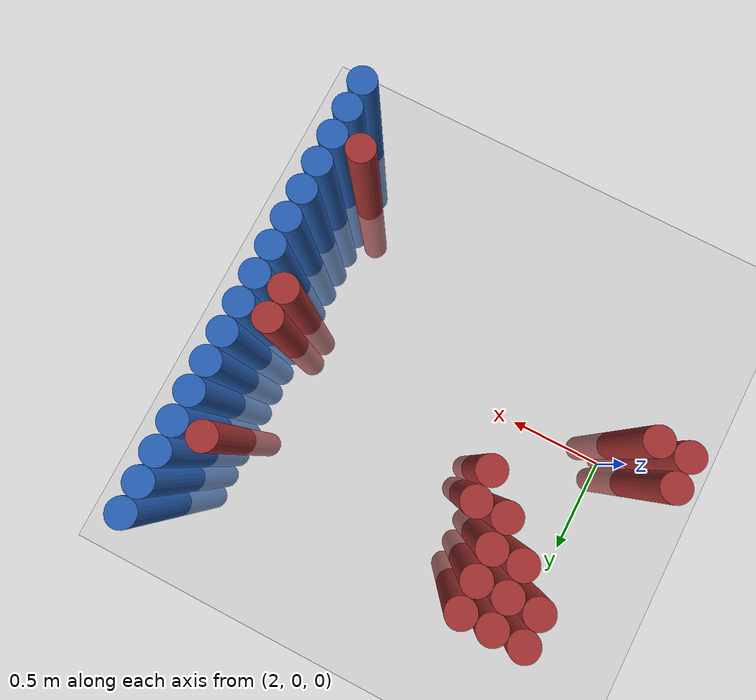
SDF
<sdf version="1.6">
 <world name="default">
  <model name="ground_plane">
   <static>1</static>
   <link name="link">
    <collision name="collision">
     <geometry><plane><normal>0 0 1</normal><size>100 100</size></plane></geometry>
     <surface><friction><ode><mu>100</mu><mu2>50</mu2></ode></friction></surface>
    </collision>
    <visual name="visual">
     <cast_shadows>0</cast_shadows>
     <geometry><plane><normal>0 0 1</normal><size>100 100</size></plane></geometry>
     <material>
      <script><uri>file://media/materials/scripts/gazebo.material</uri><name>Gazebo/Grey</name></script>
     </material>
    </visual>
   </link>
  </model>
  <model name="unit_cylinder_100">
   <static>1</static>
   <pose>3.925000 -1.025000 0.000000 0.000000 0.000000 0.000000</pose>
   <link name="link">
    <inertial>
     <mass>1</mass>
     <inertia><ixx>0.145833</ixx><ixy>0</ixy><ixz>0</ixz><iyy>0.145833</iyy><iyz>0</iyz><izz>0.125</izz></inertia>
    </inertial>
    <collision name="collision">
     <geometry><cylinder><radius>0.075000</radius><length>1.5</length></cylinder></geometry>
    </collision>
    <visual name="visual">
     <geometry><cylinder><radius>0.075000</radius><length>1.5</length></cylinder></geometry>
     <material>
      <ambient>0.152000 0.379000 0.720000 1</ambient>
      <diffuse>0.152000 0.379000 0.720000 1</diffuse>
     </material>
     <material>
      <script><name>Gazebo/Grey</name><uri>file://media/materials/scripts/gazebo.material</uri></script>
     </material>
    </visual>
   </link>
  </model>
  <model name="unit_cylinder_102">
   <static>1</static>
   <pose>3.925000 -0.875000 0.000000 0.000000 0.000000 0.000000</pose>
   <link name="link">
    <inertial>
     <mass>1</mass>
     <inertia><ixx>0.145833</ixx><ixy>0</ixy><ixz>0</ixz><iyy>0.145833</iyy><iyz>0</iyz><izz>0.125</izz></inertia>
    </inertial>
    <collision name="collision">
     <geometry><cylinder><radius>0.075000</radius><length>1.5</length></cylinder></geometry>
    </collision>
    <visual name="visual">
     <geometry><cylinder><radius>0.075000</radius><length>1.5</length></cylinder></geometry>
     <material>
      <ambient>0.152000 0.379000 0.720000 1</ambient>
      <diffuse>0.152000 0.379000 0.720000 1</diffuse>
     </material>
     <material>
      <script><name>Gazebo/Grey</name><uri>file://media/materials/scripts/gazebo.material</uri></script>
     </material>
    </visual>
   </link>
  </model>
  <model name="unit_cylinder_104">
   <static>1</static>
   <pose>3.925000 -0.725000 0.000000 0.000000 0.000000 0.000000</pose>
   <link name="link">
    <inertial>
     <mass>1</mass>
     <inertia><ixx>0.145833</ixx><ixy>0</ixy><ixz>0</ixz><iyy>0.145833</iyy><iyz>0</iyz><izz>0.125</izz></inertia>
    </inertial>
    <collision name="collision">
     <geometry><cylinder><radius>0.075000</radius><length>1.5</length></cylinder></geometry>
    </collision>
    <visual name="visual">
     <geometry><cylinder><radius>0.075000</radius><length>1.5</length></cylinder></geometry>
     <material>
      <ambient>0.152000 0.379000 0.720000 1</ambient>
      <diffuse>0.152000 0.379000 0.720000 1</diffuse>
     </material>
     <material>
      <script><name>Gazebo/Grey</name><uri>file://media/materials/scripts/gazebo.material</uri></script>
     </material>
    </visual>
   </link>
  </model>
  <model name="unit_cylinder_106">
   <static>1</static>
   <pose>3.925000 -0.575000 0.000000 0.000000 0.000000 0.000000</pose>
   <link name="link">
    <inertial>
     <mass>1</mass>
     <inertia><ixx>0.145833</ixx><ixy>0</ixy><ixz>0</ixz><iyy>0.145833</iyy><iyz>0</iyz><izz>0.125</izz></inertia>
    </inertial>
    <collision name="collision">
     <geometry><cylinder><radius>0.075000</radius><length>1.5</length></cylinder></geometry>
    </collision>
    <visual name="visual">
     <geometry><cylinder><radius>0.075000</radius><length>1.5</length></cylinder></geometry>
     <material>
      <ambient>0.152000 0.379000 0.720000 1</ambient>
      <diffuse>0.152000 0.379000 0.720000 1</diffuse>
     </material>
     <material>
      <script><name>Gazebo/Grey</name><uri>file://media/materials/scripts/gazebo.material</uri></script>
     </material>
    </visual>
   </link>
  </model>
  <model name="unit_cylinder_108">
   <static>1</static>
   <pose>3.925000 -0.425000 0.000000 0.000000 0.000000 0.000000</pose>
   <link name="link">
    <inertial>
     <mass>1</mass>
     <inertia><ixx>0.145833</ixx><ixy>0</ixy><ixz>0</ixz><iyy>0.145833</iyy><iyz>0</iyz><izz>0.125</izz></inertia>
    </inertial>
    <collision name="collision">
     <geometry><cylinder><radius>0.075000</radius><length>1.5</length></cylinder></geometry>
    </collision>
    <visual name="visual">
     <geometry><cylinder><radius>0.075000</radius><length>1.5</length></cylinder></geometry>
     <material>
      <ambient>0.152000 0.379000 0.720000 1</ambient>
      <diffuse>0.152000 0.379000 0.720000 1</diffuse>
     </material>
     <material>
      <script><name>Gazebo/Grey</name><uri>file://media/materials/scripts/gazebo.material</uri></script>
     </material>
    </visual>
   </link>
  </model>
  <model name="unit_cylinder_110">
   <static>1</static>
   <pose>3.925000 -0.275000 0.000000 0.000000 0.000000 0.000000</pose>
   <link name="link">
    <inertial>
     <mass>1</mass>
     <inertia><ixx>0.145833</ixx><ixy>0</ixy><ixz>0</ixz><iyy>0.145833</iyy><iyz>0</iyz><izz>0.125</izz></inertia>
    </inertial>
    <collision name="collision">
     <geometry><cylinder><radius>0.075000</radius><length>1.5</length></cylinder></geometry>
    </collision>
    <visual name="visual">
     <geometry><cylinder><radius>0.075000</radius><length>1.5</length></cylinder></geometry>
     <material>
      <ambient>0.152000 0.379000 0.720000 1</ambient>
      <diffuse>0.152000 0.379000 0.720000 1</diffuse>
     </material>
     <material>
      <script><name>Gazebo/Grey</name><uri>file://media/materials/scripts/gazebo.material</uri></script>
     </material>
    </visual>
   </link>
  </model>
  <model name="unit_cylinder_112">
   <static>1</static>
   <pose>3.925000 -0.125000 0.000000 0.000000 0.000000 0.000000</pose>
   <link name="link">
    <inertial>
     <mass>1</mass>
     <inertia><ixx>0.145833</ixx><ixy>0</ixy><ixz>0</ixz><iyy>0.145833</iyy><iyz>0</iyz><izz>0.125</izz></inertia>
    </inertial>
    <collision name="collision">
     <geometry><cylinder><radius>0.075000</radius><length>1.5</length></cylinder></geometry>
    </collision>
    <visual name="visual">
     <geometry><cylinder><radius>0.075000</radius><length>1.5</length></cylinder></geometry>
     <material>
      <ambient>0.152000 0.379000 0.720000 1</ambient>
      <diffuse>0.152000 0.379000 0.720000 1</diffuse>
     </material>
     <material>
      <script><name>Gazebo/Grey</name><uri>file://media/materials/scripts/gazebo.material</uri></script>
     </material>
    </visual>
   </link>
  </model>
  <model name="unit_cylinder_114">
   <static>1</static>
   <pose>3.925000 0.025000 0.000000 0.000000 0.000000 0.000000</pose>
   <link name="link">
    <inertial>
     <mass>1</mass>
     <inertia><ixx>0.145833</ixx><ixy>0</ixy><ixz>0</ixz><iyy>0.145833</iyy><iyz>0</iyz><izz>0.125</izz></inertia>
    </inertial>
    <collision name="collision">
     <geometry><cylinder><radius>0.075000</radius><length>1.5</length></cylinder></geometry>
    </collision>
    <visual name="visual">
     <geometry><cylinder><radius>0.075000</radius><length>1.5</length></cylinder></geometry>
     <material>
      <ambient>0.152000 0.379000 0.720000 1</ambient>
      <diffuse>0.152000 0.379000 0.720000 1</diffuse>
     </material>
     <material>
      <script><name>Gazebo/Grey</name><uri>file://media/materials/scripts/gazebo.material</uri></script>
     </material>
    </visual>
   </link>
  </model>
  <model name="unit_cylinder_116">
   <static>1</static>
   <pose>3.925000 0.175000 0.000000 0.000000 0.000000 0.000000</pose>
   <link name="link">
    <inertial>
     <mass>1</mass>
     <inertia><ixx>0.145833</ixx><ixy>0</ixy><ixz>0</ixz><iyy>0.145833</iyy><iyz>0</iyz><izz>0.125</izz></inertia>
    </inertial>
    <collision name="collision">
     <geometry><cylinder><radius>0.075000</radius><length>1.5</length></cylinder></geometry>
    </collision>
    <visual name="visual">
     <geometry><cylinder><radius>0.075000</radius><length>1.5</length></cylinder></geometry>
     <material>
      <ambient>0.152000 0.379000 0.720000 1</ambient>
      <diffuse>0.152000 0.379000 0.720000 1</diffuse>
     </material>
     <material>
      <script><name>Gazebo/Grey</name><uri>file://media/materials/scripts/gazebo.material</uri></script>
     </material>
    </visual>
   </link>
  </model>
  <model name="unit_cylinder_118">
   <static>1</static>
   <pose>3.925000 0.325000 0.000000 0.000000 0.000000 0.000000</pose>
   <link name="link">
    <inertial>
     <mass>1</mass>
     <inertia><ixx>0.145833</ixx><ixy>0</ixy><ixz>0</ixz><iyy>0.145833</iyy><iyz>0</iyz><izz>0.125</izz></inertia>
    </inertial>
    <collision name="collision">
     <geometry><cylinder><radius>0.075000</radius><length>1.5</length></cylinder></geometry>
    </collision>
    <visual name="visual">
     <geometry><cylinder><radius>0.075000</radius><length>1.5</length></cylinder></geometry>
     <material>
      <ambient>0.152000 0.379000 0.720000 1</ambient>
      <diffuse>0.152000 0.379000 0.720000 1</diffuse>
     </material>
     <material>
      <script><name>Gazebo/Grey</name><uri>file://media/materials/scripts/gazebo.material</uri></script>
     </material>
    </visual>
   </link>
  </model>
  <model name="unit_cylinder_120">
   <static>1</static>
   <pose>3.925000 0.475000 0.000000 0.000000 0.000000 0.000000</pose>
   <link name="link">
    <inertial>
     <mass>1</mass>
     <inertia><ixx>0.145833</ixx><ixy>0</ixy><ixz>0</ixz><iyy>0.145833</iyy><iyz>0</iyz><izz>0.125</izz></inertia>
    </inertial>
    <collision name="collision">
     <geometry><cylinder><radius>0.075000</radius><length>1.5</length></cylinder></geometry>
    </collision>
    <visual name="visual">
     <geometry><cylinder><radius>0.075000</radius><length>1.5</length></cylinder></geometry>
     <material>
      <ambient>0.152000 0.379000 0.720000 1</ambient>
      <diffuse>0.152000 0.379000 0.720000 1</diffuse>
     </material>
     <material>
      <script><name>Gazebo/Grey</name><uri>file://media/materials/scripts/gazebo.material</uri></script>
     </material>
    </visual>
   </link>
  </model>
  <model name="unit_cylinder_122">
   <static>1</static>
   <pose>3.925000 0.625000 0.000000 0.000000 0.000000 0.000000</pose>
   <link name="link">
    <inertial>
     <mass>1</mass>
     <inertia><ixx>0.145833</ixx><ixy>0</ixy><ixz>0</ixz><iyy>0.145833</iyy><iyz>0</iyz><izz>0.125</izz></inertia>
    </inertial>
    <collision name="collision">
     <geometry><cylinder><radius>0.075000</radius><length>1.5</length></cylinder></geometry>
    </collision>
    <visual name="visual">
     <geometry><cylinder><radius>0.075000</radius><length>1.5</length></cylinder></geometry>
     <material>
      <ambient>0.152000 0.379000 0.720000 1</ambient>
      <diffuse>0.152000 0.379000 0.720000 1</diffuse>
     </material>
     <material>
      <script><name>Gazebo/Grey</name><uri>file://media/materials/scripts/gazebo.material</uri></script>
     </material>
    </visual>
   </link>
  </model>
  <model name="unit_cylinder_124">
   <static>1</static>
   <pose>3.925000 0.775000 0.000000 0.000000 0.000000 0.000000</pose>
   <link name="link">
    <inertial>
     <mass>1</mass>
     <inertia><ixx>0.145833</ixx><ixy>0</ixy><ixz>0</ixz><iyy>0.145833</iyy><iyz>0</iyz><izz>0.125</izz></inertia>
    </inertial>
    <collision name="collision">
     <geometry><cylinder><radius>0.075000</radius><length>1.5</length></cylinder></geometry>
    </collision>
    <visual name="visual">
     <geometry><cylinder><radius>0.075000</radius><length>1.5</length></cylinder></geometry>
     <material>
      <ambient>0.152000 0.379000 0.720000 1</ambient>
      <diffuse>0.152000 0.379000 0.720000 1</diffuse>
     </material>
     <material>
      <script><name>Gazebo/Grey</name><uri>file://media/materials/scripts/gazebo.material</uri></script>
     </material>
    </visual>
   </link>
  </model>
  <model name="unit_cylinder_126">
   <static>1</static>
   <pose>3.925000 0.925000 0.000000 0.000000 0.000000 0.000000</pose>
   <link name="link">
    <inertial>
     <mass>1</mass>
     <inertia><ixx>0.145833</ixx><ixy>0</ixy><ixz>0</ixz><iyy>0.145833</iyy><iyz>0</iyz><izz>0.125</izz></inertia>
    </inertial>
    <collision name="collision">
     <geometry><cylinder><radius>0.075000</radius><length>1.5</length></cylinder></geometry>
    </collision>
    <visual name="visual">
     <geometry><cylinder><radius>0.075000</radius><length>1.5</length></cylinder></geometry>
     <material>
      <ambient>0.152000 0.379000 0.720000 1</ambient>
      <diffuse>0.152000 0.379000 0.720000 1</diffuse>
     </material>
     <material>
      <script><name>Gazebo/Grey</name><uri>file://media/materials/scripts/gazebo.material</uri></script>
     </material>
    </visual>
   </link>
  </model>
  <model name="unit_cylinder_128">
   <static>1</static>
   <pose>3.925000 1.075000 0.000000 0.000000 0.000000 0.000000</pose>
   <link name="link">
    <inertial>
     <mass>1</mass>
     <inertia><ixx>0.145833</ixx><ixy>0</ixy><ixz>0</ixz><iyy>0.145833</iyy><iyz>0</iyz><izz>0.125</izz></inertia>
    </inertial>
    <collision name="collision">
     <geometry><cylinder><radius>0.075000</radius><length>1.5</length></cylinder></geometry>
    </collision>
    <visual name="visual">
     <geometry><cylinder><radius>0.075000</radius><length>1.5</length></cylinder></geometry>
     <material>
      <ambient>0.152000 0.379000 0.720000 1</ambient>
      <diffuse>0.152000 0.379000 0.720000 1</diffuse>
     </material>
     <material>
      <script><name>Gazebo/Grey</name><uri>file://media/materials/scripts/gazebo.material</uri></script>
     </material>
    </visual>
   </link>
  </model>
  <model name="unit_cylinder_130">
   <static>1</static>
   <pose>3.925000 1.225000 0.000000 0.000000 0.000000 0.000000</pose>
   <link name="link">
    <inertial>
     <mass>1</mass>
     <inertia><ixx>0.145833</ixx><ixy>0</ixy><ixz>0</ixz><iyy>0.145833</iyy><iyz>0</iyz><izz>0.125</izz></inertia>
    </inertial>
    <collision name="collision">
     <geometry><cylinder><radius>0.075000</radius><length>1.5</length></cylinder></geometry>
    </collision>
    <visual name="visual">
     <geometry><cylinder><radius>0.075000</radius><length>1.5</length></cylinder></geometry>
     <material>
      <ambient>0.152000 0.379000 0.720000 1</ambient>
      <diffuse>0.152000 0.379000 0.720000 1</diffuse>
     </material>
     <material>
      <script><name>Gazebo/Grey</name><uri>file://media/materials/scripts/gazebo.material</uri></script>
     </material>
    </visual>
   </link>
  </model>
  <model name="unit_cylinder_381">
   <static>1</static>
   <pose>1.825000 -0.125000 0.000000 0.000000 0.000000 0.000000</pose>
   <link name="link">
    <inertial>
     <mass>1</mass>
     <inertia><ixx>0.145833</ixx><ixy>0</ixy><ixz>0</ixz><iyy>0.145833</iyy><iyz>0</iyz><izz>0.125</izz></inertia>
    </inertial>
    <collision name="collision">
     <geometry><cylinder><radius>0.075000</radius><length>1.5</length></cylinder></geometry>
    </collision>
    <visual name="visual">
     <geometry><cylinder><radius>0.075000</radius><length>1.5</length></cylinder></geometry>
     <material>
      <ambient>0.648000 0.192000 0.192000 1</ambient>
      <diffuse>0.648000 0.192000 0.192000 1</diffuse>
     </material>
     <material>
      <script><name>Gazebo/Grey</name><uri>file://media/materials/scripts/gazebo.material</uri></script>
     </material>
    </visual>
   </link>
  </model>
  <model name="unit_cylinder_382">
   <static>1</static>
   <pose>1.825000 0.025000 0.000000 0.000000 0.000000 0.000000</pose>
   <link name="link">
    <inertial>
     <mass>1</mass>
     <inertia><ixx>0.145833</ixx><ixy>0</ixy><ixz>0</ixz><iyy>0.145833</iyy><iyz>0</iyz><izz>0.125</izz></inertia>
    </inertial>
    <collision name="collision">
     <geometry><cylinder><radius>0.075000</radius><length>1.5</length></cylinder></geometry>
    </collision>
    <visual name="visual">
     <geometry><cylinder><radius>0.075000</radius><length>1.5</length></cylinder></geometry>
     <material>
      <ambient>0.648000 0.192000 0.192000 1</ambient>
      <diffuse>0.648000 0.192000 0.192000 1</diffuse>
     </material>
     <material>
      <script><name>Gazebo/Grey</name><uri>file://media/materials/scripts/gazebo.material</uri></script>
     </material>
    </visual>
   </link>
  </model>
  <model name="unit_cylinder_383">
   <static>1</static>
   <pose>1.975000 -0.125000 0.000000 0.000000 0.000000 0.000000</pose>
   <link name="link">
    <inertial>
     <mass>1</mass>
     <inertia><ixx>0.145833</ixx><ixy>0</ixy><ixz>0</ixz><iyy>0.145833</iyy><iyz>0</iyz><izz>0.125</izz></inertia>
    </inertial>
    <collision name="collision">
     <geometry><cylinder><radius>0.075000</radius><length>1.5</length></cylinder></geometry>
    </collision>
    <visual name="visual">
     <geometry><cylinder><radius>0.075000</radius><length>1.5</length></cylinder></geometry>
     <material>
      <ambient>0.648000 0.192000 0.192000 1</ambient>
      <diffuse>0.648000 0.192000 0.192000 1</diffuse>
     </material>
     <material>
      <script><name>Gazebo/Grey</name><uri>file://media/materials/scripts/gazebo.material</uri></script>
     </material>
    </visual>
   </link>
  </model>
  <model name="unit_cylinder_384">
   <static>1</static>
   <pose>2.125000 0.775000 0.000000 0.000000 0.000000 0.000000</pose>
   <link name="link">
    <inertial>
     <mass>1</mass>
     <inertia><ixx>0.145833</ixx><ixy>0</ixy><ixz>0</ixz><iyy>0.145833</iyy><iyz>0</iyz><izz>0.125</izz></inertia>
    </inertial>
    <collision name="collision">
     <geometry><cylinder><radius>0.075000</radius><length>1.5</length></cylinder></geometry>
    </collision>
    <visual name="visual">
     <geometry><cylinder><radius>0.075000</radius><length>1.5</length></cylinder></geometry>
     <material>
      <ambient>0.648000 0.192000 0.192000 1</ambient>
      <diffuse>0.648000 0.192000 0.192000 1</diffuse>
     </material>
     <material>
      <script><name>Gazebo/Grey</name><uri>file://media/materials/scripts/gazebo.material</uri></script>
     </material>
    </visual>
   </link>
  </model>
  <model name="unit_cylinder_385">
   <static>1</static>
   <pose>2.125000 0.925000 0.000000 0.000000 0.000000 0.000000</pose>
   <link name="link">
    <inertial>
     <mass>1</mass>
     <inertia><ixx>0.145833</ixx><ixy>0</ixy><ixz>0</ixz><iyy>0.145833</iyy><iyz>0</iyz><izz>0.125</izz></inertia>
    </inertial>
    <collision name="collision">
     <geometry><cylinder><radius>0.075000</radius><length>1.5</length></cylinder></geometry>
    </collision>
    <visual name="visual">
     <geometry><cylinder><radius>0.075000</radius><length>1.5</length></cylinder></geometry>
     <material>
      <ambient>0.648000 0.192000 0.192000 1</ambient>
      <diffuse>0.648000 0.192000 0.192000 1</diffuse>
     </material>
     <material>
      <script><name>Gazebo/Grey</name><uri>file://media/materials/scripts/gazebo.material</uri></script>
     </material>
    </visual>
   </link>
  </model>
  <model name="unit_cylinder_386">
   <static>1</static>
   <pose>2.275000 0.625000 0.000000 0.000000 0.000000 0.000000</pose>
   <link name="link">
    <inertial>
     <mass>1</mass>
     <inertia><ixx>0.145833</ixx><ixy>0</ixy><ixz>0</ixz><iyy>0.145833</iyy><iyz>0</iyz><izz>0.125</izz></inertia>
    </inertial>
    <collision name="collision">
     <geometry><cylinder><radius>0.075000</radius><length>1.5</length></cylinder></geometry>
    </collision>
    <visual name="visual">
     <geometry><cylinder><radius>0.075000</radius><length>1.5</length></cylinder></geometry>
     <material>
      <ambient>0.648000 0.192000 0.192000 1</ambient>
      <diffuse>0.648000 0.192000 0.192000 1</diffuse>
     </material>
     <material>
      <script><name>Gazebo/Grey</name><uri>file://media/materials/scripts/gazebo.material</uri></script>
     </material>
    </visual>
   </link>
  </model>
  <model name="unit_cylinder_387">
   <static>1</static>
   <pose>2.275000 0.775000 0.000000 0.000000 0.000000 0.000000</pose>
   <link name="link">
    <inertial>
     <mass>1</mass>
     <inertia><ixx>0.145833</ixx><ixy>0</ixy><ixz>0</ixz><iyy>0.145833</iyy><iyz>0</iyz><izz>0.125</izz></inertia>
    </inertial>
    <collision name="collision">
     <geometry><cylinder><radius>0.075000</radius><length>1.5</length></cylinder></geometry>
    </collision>
    <visual name="visual">
     <geometry><cylinder><radius>0.075000</radius><length>1.5</length></cylinder></geometry>
     <material>
      <ambient>0.648000 0.192000 0.192000 1</ambient>
      <diffuse>0.648000 0.192000 0.192000 1</diffuse>
     </material>
     <material>
      <script><name>Gazebo/Grey</name><uri>file://media/materials/scripts/gazebo.material</uri></script>
     </material>
    </visual>
   </link>
  </model>
  <model name="unit_cylinder_388">
   <static>1</static>
   <pose>2.275000 0.925000 0.000000 0.000000 0.000000 0.000000</pose>
   <link name="link">
    <inertial>
     <mass>1</mass>
     <inertia><ixx>0.145833</ixx><ixy>0</ixy><ixz>0</ixz><iyy>0.145833</iyy><iyz>0</iyz><izz>0.125</izz></inertia>
    </inertial>
    <collision name="collision">
     <geometry><cylinder><radius>0.075000</radius><length>1.5</length></cylinder></geometry>
    </collision>
    <visual name="visual">
     <geometry><cylinder><radius>0.075000</radius><length>1.5</length></cylinder></geometry>
     <material>
      <ambient>0.648000 0.192000 0.192000 1</ambient>
      <diffuse>0.648000 0.192000 0.192000 1</diffuse>
     </material>
     <material>
      <script><name>Gazebo/Grey</name><uri>file://media/materials/scripts/gazebo.material</uri></script>
     </material>
    </visual>
   </link>
  </model>
  <model name="unit_cylinder_389">
   <static>1</static>
   <pose>2.425000 0.475000 0.000000 0.000000 0.000000 0.000000</pose>
   <link name="link">
    <inertial>
     <mass>1</mass>
     <inertia><ixx>0.145833</ixx><ixy>0</ixy><ixz>0</ixz><iyy>0.145833</iyy><iyz>0</iyz><izz>0.125</izz></inertia>
    </inertial>
    <collision name="collision">
     <geometry><cylinder><radius>0.075000</radius><length>1.5</length></cylinder></geometry>
    </collision>
    <visual name="visual">
     <geometry><cylinder><radius>0.075000</radius><length>1.5</length></cylinder></geometry>
     <material>
      <ambient>0.648000 0.192000 0.192000 1</ambient>
      <diffuse>0.648000 0.192000 0.192000 1</diffuse>
     </material>
     <material>
      <script><name>Gazebo/Grey</name><uri>file://media/materials/scripts/gazebo.material</uri></script>
     </material>
    </visual>
   </link>
  </model>
  <model name="unit_cylinder_390">
   <static>1</static>
   <pose>2.425000 0.625000 0.000000 0.000000 0.000000 0.000000</pose>
   <link name="link">
    <inertial>
     <mass>1</mass>
     <inertia><ixx>0.145833</ixx><ixy>0</ixy><ixz>0</ixz><iyy>0.145833</iyy><iyz>0</iyz><izz>0.125</izz></inertia>
    </inertial>
    <collision name="collision">
     <geometry><cylinder><radius>0.075000</radius><length>1.5</length></cylinder></geometry>
    </collision>
    <visual name="visual">
     <geometry><cylinder><radius>0.075000</radius><length>1.5</length></cylinder></geometry>
     <material>
      <ambient>0.648000 0.192000 0.192000 1</ambient>
      <diffuse>0.648000 0.192000 0.192000 1</diffuse>
     </material>
     <material>
      <script><name>Gazebo/Grey</name><uri>file://media/materials/scripts/gazebo.material</uri></script>
     </material>
    </visual>
   </link>
  </model>
  <model name="unit_cylinder_391">
   <static>1</static>
   <pose>2.425000 0.775000 0.000000 0.000000 0.000000 0.000000</pose>
   <link name="link">
    <inertial>
     <mass>1</mass>
     <inertia><ixx>0.145833</ixx><ixy>0</ixy><ixz>0</ixz><iyy>0.145833</iyy><iyz>0</iyz><izz>0.125</izz></inertia>
    </inertial>
    <collision name="collision">
     <geometry><cylinder><radius>0.075000</radius><length>1.5</length></cylinder></geometry>
    </collision>
    <visual name="visual">
     <geometry><cylinder><radius>0.075000</radius><length>1.5</length></cylinder></geometry>
     <material>
      <ambient>0.648000 0.192000 0.192000 1</ambient>
      <diffuse>0.648000 0.192000 0.192000 1</diffuse>
     </material>
     <material>
      <script><name>Gazebo/Grey</name><uri>file://media/materials/scripts/gazebo.material</uri></script>
     </material>
    </visual>
   </link>
  </model>
  <model name="unit_cylinder_392">
   <static>1</static>
   <pose>2.425000 0.925000 0.000000 0.000000 0.000000 0.000000</pose>
   <link name="link">
    <inertial>
     <mass>1</mass>
     <inertia><ixx>0.145833</ixx><ixy>0</ixy><ixz>0</ixz><iyy>0.145833</iyy><iyz>0</iyz><izz>0.125</izz></inertia>
    </inertial>
    <collision name="collision">
     <geometry><cylinder><radius>0.075000</radius><length>1.5</length></cylinder></geometry>
    </collision>
    <visual name="visual">
     <geometry><cylinder><radius>0.075000</radius><length>1.5</length></cylinder></geometry>
     <material>
      <ambient>0.648000 0.192000 0.192000 1</ambient>
      <diffuse>0.648000 0.192000 0.192000 1</diffuse>
     </material>
     <material>
      <script><name>Gazebo/Grey</name><uri>file://media/materials/scripts/gazebo.material</uri></script>
     </material>
    </visual>
   </link>
  </model>
  <model name="unit_cylinder_397">
   <static>1</static>
   <pose>2.575000 0.325000 0.000000 0.000000 0.000000 0.000000</pose>
   <link name="link">
    <inertial>
     <mass>1</mass>
     <inertia><ixx>0.145833</ixx><ixy>0</ixy><ixz>0</ixz><iyy>0.145833</iyy><iyz>0</iyz><izz>0.125</izz></inertia>
    </inertial>
    <collision name="collision">
     <geometry><cylinder><radius>0.075000</radius><length>1.5</length></cylinder></geometry>
    </collision>
    <visual name="visual">
     <geometry><cylinder><radius>0.075000</radius><length>1.5</length></cylinder></geometry>
     <material>
      <ambient>0.648000 0.192000 0.192000 1</ambient>
      <diffuse>0.648000 0.192000 0.192000 1</diffuse>
     </material>
     <material>
      <script><name>Gazebo/Grey</name><uri>file://media/materials/scripts/gazebo.material</uri></script>
     </material>
    </visual>
   </link>
  </model>
  <model name="unit_cylinder_398">
   <static>1</static>
   <pose>2.575000 0.475000 0.000000 0.000000 0.000000 0.000000</pose>
   <link name="link">
    <inertial>
     <mass>1</mass>
     <inertia><ixx>0.145833</ixx><ixy>0</ixy><ixz>0</ixz><iyy>0.145833</iyy><iyz>0</iyz><izz>0.125</izz></inertia>
    </inertial>
    <collision name="collision">
     <geometry><cylinder><radius>0.075000</radius><length>1.5</length></cylinder></geometry>
    </collision>
    <visual name="visual">
     <geometry><cylinder><radius>0.075000</radius><length>1.5</length></cylinder></geometry>
     <material>
      <ambient>0.648000 0.192000 0.192000 1</ambient>
      <diffuse>0.648000 0.192000 0.192000 1</diffuse>
     </material>
     <material>
      <script><name>Gazebo/Grey</name><uri>file://media/materials/scripts/gazebo.material</uri></script>
     </material>
    </visual>
   </link>
  </model>
  <model name="unit_cylinder_418">
   <static>1</static>
   <pose>3.775000 -0.725000 0.000000 0.000000 0.000000 0.000000</pose>
   <link name="link">
    <inertial>
     <mass>1</mass>
     <inertia><ixx>0.145833</ixx><ixy>0</ixy><ixz>0</ixz><iyy>0.145833</iyy><iyz>0</iyz><izz>0.125</izz></inertia>
    </inertial>
    <collision name="collision">
     <geometry><cylinder><radius>0.075000</radius><length>1.5</length></cylinder></geometry>
    </collision>
    <visual name="visual">
     <geometry><cylinder><radius>0.075000</radius><length>1.5</length></cylinder></geometry>
     <material>
      <ambient>0.648000 0.192000 0.192000 1</ambient>
      <diffuse>0.648000 0.192000 0.192000 1</diffuse>
     </material>
     <material>
      <script><name>Gazebo/Grey</name><uri>file://media/materials/scripts/gazebo.material</uri></script>
     </material>
    </visual>
   </link>
  </model>
  <model name="unit_cylinder_419">
   <static>1</static>
   <pose>3.775000 0.025000 0.000000 0.000000 0.000000 0.000000</pose>
   <link name="link">
    <inertial>
     <mass>1</mass>
     <inertia><ixx>0.145833</ixx><ixy>0</ixy><ixz>0</ixz><iyy>0.145833</iyy><iyz>0</iyz><izz>0.125</izz></inertia>
    </inertial>
    <collision name="collision">
     <geometry><cylinder><radius>0.075000</radius><length>1.5</length></cylinder></geometry>
    </collision>
    <visual name="visual">
     <geometry><cylinder><radius>0.075000</radius><length>1.5</length></cylinder></geometry>
     <material>
      <ambient>0.648000 0.192000 0.192000 1</ambient>
      <diffuse>0.648000 0.192000 0.192000 1</diffuse>
     </material>
     <material>
      <script><name>Gazebo/Grey</name><uri>file://media/materials/scripts/gazebo.material</uri></script>
     </material>
    </visual>
   </link>
  </model>
  <model name="unit_cylinder_420">
   <static>1</static>
   <pose>3.775000 0.175000 0.000000 0.000000 0.000000 0.000000</pose>
   <link name="link">
    <inertial>
     <mass>1</mass>
     <inertia><ixx>0.145833</ixx><ixy>0</ixy><ixz>0</ixz><iyy>0.145833</iyy><iyz>0</iyz><izz>0.125</izz></inertia>
    </inertial>
    <collision name="collision">
     <geometry><cylinder><radius>0.075000</radius><length>1.5</length></cylinder></geometry>
    </collision>
    <visual name="visual">
     <geometry><cylinder><radius>0.075000</radius><length>1.5</length></cylinder></geometry>
     <material>
      <ambient>0.648000 0.192000 0.192000 1</ambient>
      <diffuse>0.648000 0.192000 0.192000 1</diffuse>
     </material>
     <material>
      <script><name>Gazebo/Grey</name><uri>file://media/materials/scripts/gazebo.material</uri></script>
     </material>
    </visual>
   </link>
  </model>
  <model name="unit_cylinder_421">
   <static>1</static>
   <pose>3.775000 0.775000 0.000000 0.000000 0.000000 0.000000</pose>
   <link name="link">
    <inertial>
     <mass>1</mass>
     <inertia><ixx>0.145833</ixx><ixy>0</ixy><ixz>0</ixz><iyy>0.145833</iyy><iyz>0</iyz><izz>0.125</izz></inertia>
    </inertial>
    <collision name="collision">
     <geometry><cylinder><radius>0.075000</radius><length>1.5</length></cylinder></geometry>
    </collision>
    <visual name="visual">
     <geometry><cylinder><radius>0.075000</radius><length>1.5</length></cylinder></geometry>
     <material>
      <ambient>0.648000 0.192000 0.192000 1</ambient>
      <diffuse>0.648000 0.192000 0.192000 1</diffuse>
     </material>
     <material>
      <script><name>Gazebo/Grey</name><uri>file://media/materials/scripts/gazebo.material</uri></script>
     </material>
    </visual>
   </link>
  </model>
  <model name="unit_cylinder_448">
   <static>1</static>
   <pose>3.925000 -1.025000 0.000000 0.000000 0.000000 0.000000</pose>
   <link name="link">
    <inertial>
     <mass>1</mass>
     <inertia><ixx>0.145833</ixx><ixy>0</ixy><ixz>0</ixz><iyy>0.145833</iyy><iyz>0</iyz><izz>0.125</izz></inertia>
    </inertial>
    <collision name="collision">
     <geometry><cylinder><radius>0.075000</radius><length>1.5</length></cylinder></geometry>
    </collision>
    <visual name="visual">
     <geometry><cylinder><radius>0.075000</radius><length>1.5</length></cylinder></geometry>
     <material>
      <ambient>0.152000 0.379000 0.720000 1</ambient>
      <diffuse>0.152000 0.379000 0.720000 1</diffuse>
     </material>
     <material>
      <script><name>Gazebo/Grey</name><uri>file://media/materials/scripts/gazebo.material</uri></script>
     </material>
    </visual>
   </link>
  </model>
  <model name="unit_cylinder_449">
   <static>1</static>
   <pose>3.925000 -0.875000 0.000000 0.000000 0.000000 0.000000</pose>
   <link name="link">
    <inertial>
     <mass>1</mass>
     <inertia><ixx>0.145833</ixx><ixy>0</ixy><ixz>0</ixz><iyy>0.145833</iyy><iyz>0</iyz><izz>0.125</izz></inertia>
    </inertial>
    <collision name="collision">
     <geometry><cylinder><radius>0.075000</radius><length>1.5</length></cylinder></geometry>
    </collision>
    <visual name="visual">
     <geometry><cylinder><radius>0.075000</radius><length>1.5</length></cylinder></geometry>
     <material>
      <ambient>0.152000 0.379000 0.720000 1</ambient>
      <diffuse>0.152000 0.379000 0.720000 1</diffuse>
     </material>
     <material>
      <script><name>Gazebo/Grey</name><uri>file://media/materials/scripts/gazebo.material</uri></script>
     </material>
    </visual>
   </link>
  </model>
  <model name="unit_cylinder_450">
   <static>1</static>
   <pose>3.925000 -0.725000 0.000000 0.000000 0.000000 0.000000</pose>
   <link name="link">
    <inertial>
     <mass>1</mass>
     <inertia><ixx>0.145833</ixx><ixy>0</ixy><ixz>0</ixz><iyy>0.145833</iyy><iyz>0</iyz><izz>0.125</izz></inertia>
    </inertial>
    <collision name="collision">
     <geometry><cylinder><radius>0.075000</radius><length>1.5</length></cylinder></geometry>
    </collision>
    <visual name="visual">
     <geometry><cylinder><radius>0.075000</radius><length>1.5</length></cylinder></geometry>
     <material>
      <ambient>0.152000 0.379000 0.720000 1</ambient>
      <diffuse>0.152000 0.379000 0.720000 1</diffuse>
     </material>
     <material>
      <script><name>Gazebo/Grey</name><uri>file://media/materials/scripts/gazebo.material</uri></script>
     </material>
    </visual>
   </link>
  </model>
  <model name="unit_cylinder_451">
   <static>1</static>
   <pose>3.925000 -0.575000 0.000000 0.000000 0.000000 0.000000</pose>
   <link name="link">
    <inertial>
     <mass>1</mass>
     <inertia><ixx>0.145833</ixx><ixy>0</ixy><ixz>0</ixz><iyy>0.145833</iyy><iyz>0</iyz><izz>0.125</izz></inertia>
    </inertial>
    <collision name="collision">
     <geometry><cylinder><radius>0.075000</radius><length>1.5</length></cylinder></geometry>
    </collision>
    <visual name="visual">
     <geometry><cylinder><radius>0.075000</radius><length>1.5</length></cylinder></geometry>
     <material>
      <ambient>0.152000 0.379000 0.720000 1</ambient>
      <diffuse>0.152000 0.379000 0.720000 1</diffuse>
     </material>
     <material>
      <script><name>Gazebo/Grey</name><uri>file://media/materials/scripts/gazebo.material</uri></script>
     </material>
    </visual>
   </link>
  </model>
  <model name="unit_cylinder_452">
   <static>1</static>
   <pose>3.925000 -0.425000 0.000000 0.000000 0.000000 0.000000</pose>
   <link name="link">
    <inertial>
     <mass>1</mass>
     <inertia><ixx>0.145833</ixx><ixy>0</ixy><ixz>0</ixz><iyy>0.145833</iyy><iyz>0</iyz><izz>0.125</izz></inertia>
    </inertial>
    <collision name="collision">
     <geometry><cylinder><radius>0.075000</radius><length>1.5</length></cylinder></geometry>
    </collision>
    <visual name="visual">
     <geometry><cylinder><radius>0.075000</radius><length>1.5</length></cylinder></geometry>
     <material>
      <ambient>0.152000 0.379000 0.720000 1</ambient>
      <diffuse>0.152000 0.379000 0.720000 1</diffuse>
     </material>
     <material>
      <script><name>Gazebo/Grey</name><uri>file://media/materials/scripts/gazebo.material</uri></script>
     </material>
    </visual>
   </link>
  </model>
  <model name="unit_cylinder_453">
   <static>1</static>
   <pose>3.925000 -0.275000 0.000000 0.000000 0.000000 0.000000</pose>
   <link name="link">
    <inertial>
     <mass>1</mass>
     <inertia><ixx>0.145833</ixx><ixy>0</ixy><ixz>0</ixz><iyy>0.145833</iyy><iyz>0</iyz><izz>0.125</izz></inertia>
    </inertial>
    <collision name="collision">
     <geometry><cylinder><radius>0.075000</radius><length>1.5</length></cylinder></geometry>
    </collision>
    <visual name="visual">
     <geometry><cylinder><radius>0.075000</radius><length>1.5</length></cylinder></geometry>
     <material>
      <ambient>0.152000 0.379000 0.720000 1</ambient>
      <diffuse>0.152000 0.379000 0.720000 1</diffuse>
     </material>
     <material>
      <script><name>Gazebo/Grey</name><uri>file://media/materials/scripts/gazebo.material</uri></script>
     </material>
    </visual>
   </link>
  </model>
  <model name="unit_cylinder_454">
   <static>1</static>
   <pose>3.925000 -0.125000 0.000000 0.000000 0.000000 0.000000</pose>
   <link name="link">
    <inertial>
     <mass>1</mass>
     <inertia><ixx>0.145833</ixx><ixy>0</ixy><ixz>0</ixz><iyy>0.145833</iyy><iyz>0</iyz><izz>0.125</izz></inertia>
    </inertial>
    <collision name="collision">
     <geometry><cylinder><radius>0.075000</radius><length>1.5</length></cylinder></geometry>
    </collision>
    <visual name="visual">
     <geometry><cylinder><radius>0.075000</radius><length>1.5</length></cylinder></geometry>
     <material>
      <ambient>0.152000 0.379000 0.720000 1</ambient>
      <diffuse>0.152000 0.379000 0.720000 1</diffuse>
     </material>
     <material>
      <script><name>Gazebo/Grey</name><uri>file://media/materials/scripts/gazebo.material</uri></script>
     </material>
    </visual>
   </link>
  </model>
  <model name="unit_cylinder_455">
   <static>1</static>
   <pose>3.925000 0.025000 0.000000 0.000000 0.000000 0.000000</pose>
   <link name="link">
    <inertial>
     <mass>1</mass>
     <inertia><ixx>0.145833</ixx><ixy>0</ixy><ixz>0</ixz><iyy>0.145833</iyy><iyz>0</iyz><izz>0.125</izz></inertia>
    </inertial>
    <collision name="collision">
     <geometry><cylinder><radius>0.075000</radius><length>1.5</length></cylinder></geometry>
    </collision>
    <visual name="visual">
     <geometry><cylinder><radius>0.075000</radius><length>1.5</length></cylinder></geometry>
     <material>
      <ambient>0.152000 0.379000 0.720000 1</ambient>
      <diffuse>0.152000 0.379000 0.720000 1</diffuse>
     </material>
     <material>
      <script><name>Gazebo/Grey</name><uri>file://media/materials/scripts/gazebo.material</uri></script>
     </material>
    </visual>
   </link>
  </model>
  <model name="unit_cylinder_456">
   <static>1</static>
   <pose>3.925000 0.175000 0.000000 0.000000 0.000000 0.000000</pose>
   <link name="link">
    <inertial>
     <mass>1</mass>
     <inertia><ixx>0.145833</ixx><ixy>0</ixy><ixz>0</ixz><iyy>0.145833</iyy><iyz>0</iyz><izz>0.125</izz></inertia>
    </inertial>
    <collision name="collision">
     <geometry><cylinder><radius>0.075000</radius><length>1.5</length></cylinder></geometry>
    </collision>
    <visual name="visual">
     <geometry><cylinder><radius>0.075000</radius><length>1.5</length></cylinder></geometry>
     <material>
      <ambient>0.152000 0.379000 0.720000 1</ambient>
      <diffuse>0.152000 0.379000 0.720000 1</diffuse>
     </material>
     <material>
      <script><name>Gazebo/Grey</name><uri>file://media/materials/scripts/gazebo.material</uri></script>
     </material>
    </visual>
   </link>
  </model>
  <model name="unit_cylinder_457">
   <static>1</static>
   <pose>3.925000 0.325000 0.000000 0.000000 0.000000 0.000000</pose>
   <link name="link">
    <inertial>
     <mass>1</mass>
     <inertia><ixx>0.145833</ixx><ixy>0</ixy><ixz>0</ixz><iyy>0.145833</iyy><iyz>0</iyz><izz>0.125</izz></inertia>
    </inertial>
    <collision name="collision">
     <geometry><cylinder><radius>0.075000</radius><length>1.5</length></cylinder></geometry>
    </collision>
    <visual name="visual">
     <geometry><cylinder><radius>0.075000</radius><length>1.5</length></cylinder></geometry>
     <material>
      <ambient>0.152000 0.379000 0.720000 1</ambient>
      <diffuse>0.152000 0.379000 0.720000 1</diffuse>
     </material>
     <material>
      <script><name>Gazebo/Grey</name><uri>file://media/materials/scripts/gazebo.material</uri></script>
     </material>
    </visual>
   </link>
  </model>
  <model name="unit_cylinder_458">
   <static>1</static>
   <pose>3.925000 0.475000 0.000000 0.000000 0.000000 0.000000</pose>
   <link name="link">
    <inertial>
     <mass>1</mass>
     <inertia><ixx>0.145833</ixx><ixy>0</ixy><ixz>0</ixz><iyy>0.145833</iyy><iyz>0</iyz><izz>0.125</izz></inertia>
    </inertial>
    <collision name="collision">
     <geometry><cylinder><radius>0.075000</radius><length>1.5</length></cylinder></geometry>
    </collision>
    <visual name="visual">
     <geometry><cylinder><radius>0.075000</radius><length>1.5</length></cylinder></geometry>
     <material>
      <ambient>0.152000 0.379000 0.720000 1</ambient>
      <diffuse>0.152000 0.379000 0.720000 1</diffuse>
     </material>
     <material>
      <script><name>Gazebo/Grey</name><uri>file://media/materials/scripts/gazebo.material</uri></script>
     </material>
    </visual>
   </link>
  </model>
  <model name="unit_cylinder_459">
   <static>1</static>
   <pose>3.925000 0.625000 0.000000 0.000000 0.000000 0.000000</pose>
   <link name="link">
    <inertial>
     <mass>1</mass>
     <inertia><ixx>0.145833</ixx><ixy>0</ixy><ixz>0</ixz><iyy>0.145833</iyy><iyz>0</iyz><izz>0.125</izz></inertia>
    </inertial>
    <collision name="collision">
     <geometry><cylinder><radius>0.075000</radius><length>1.5</length></cylinder></geometry>
    </collision>
    <visual name="visual">
     <geometry><cylinder><radius>0.075000</radius><length>1.5</length></cylinder></geometry>
     <material>
      <ambient>0.152000 0.379000 0.720000 1</ambient>
      <diffuse>0.152000 0.379000 0.720000 1</diffuse>
     </material>
     <material>
      <script><name>Gazebo/Grey</name><uri>file://media/materials/scripts/gazebo.material</uri></script>
     </material>
    </visual>
   </link>
  </model>
  <model name="unit_cylinder_460">
   <static>1</static>
   <pose>3.925000 0.775000 0.000000 0.000000 0.000000 0.000000</pose>
   <link name="link">
    <inertial>
     <mass>1</mass>
     <inertia><ixx>0.145833</ixx><ixy>0</ixy><ixz>0</ixz><iyy>0.145833</iyy><iyz>0</iyz><izz>0.125</izz></inertia>
    </inertial>
    <collision name="collision">
     <geometry><cylinder><radius>0.075000</radius><length>1.5</length></cylinder></geometry>
    </collision>
    <visual name="visual">
     <geometry><cylinder><radius>0.075000</radius><length>1.5</length></cylinder></geometry>
     <material>
      <ambient>0.152000 0.379000 0.720000 1</ambient>
      <diffuse>0.152000 0.379000 0.720000 1</diffuse>
     </material>
     <material>
      <script><name>Gazebo/Grey</name><uri>file://media/materials/scripts/gazebo.material</uri></script>
     </material>
    </visual>
   </link>
  </model>
  <model name="unit_cylinder_461">
   <static>1</static>
   <pose>3.925000 0.925000 0.000000 0.000000 0.000000 0.000000</pose>
   <link name="link">
    <inertial>
     <mass>1</mass>
     <inertia><ixx>0.145833</ixx><ixy>0</ixy><ixz>0</ixz><iyy>0.145833</iyy><iyz>0</iyz><izz>0.125</izz></inertia>
    </inertial>
    <collision name="collision">
     <geometry><cylinder><radius>0.075000</radius><length>1.5</length></cylinder></geometry>
    </collision>
    <visual name="visual">
     <geometry><cylinder><radius>0.075000</radius><length>1.5</length></cylinder></geometry>
     <material>
      <ambient>0.152000 0.379000 0.720000 1</ambient>
      <diffuse>0.152000 0.379000 0.720000 1</diffuse>
     </material>
     <material>
      <script><name>Gazebo/Grey</name><uri>file://media/materials/scripts/gazebo.material</uri></script>
     </material>
    </visual>
   </link>
  </model>
  <model name="unit_cylinder_462">
   <static>1</static>
   <pose>3.925000 1.075000 0.000000 0.000000 0.000000 0.000000</pose>
   <link name="link">
    <inertial>
     <mass>1</mass>
     <inertia><ixx>0.145833</ixx><ixy>0</ixy><ixz>0</ixz><iyy>0.145833</iyy><iyz>0</iyz><izz>0.125</izz></inertia>
    </inertial>
    <collision name="collision">
     <geometry><cylinder><radius>0.075000</radius><length>1.5</length></cylinder></geometry>
    </collision>
    <visual name="visual">
     <geometry><cylinder><radius>0.075000</radius><length>1.5</length></cylinder></geometry>
     <material>
      <ambient>0.152000 0.379000 0.720000 1</ambient>
      <diffuse>0.152000 0.379000 0.720000 1</diffuse>
     </material>
     <material>
      <script><name>Gazebo/Grey</name><uri>file://media/materials/scripts/gazebo.material</uri></script>
     </material>
    </visual>
   </link>
  </model>
 </world>
</sdf>
